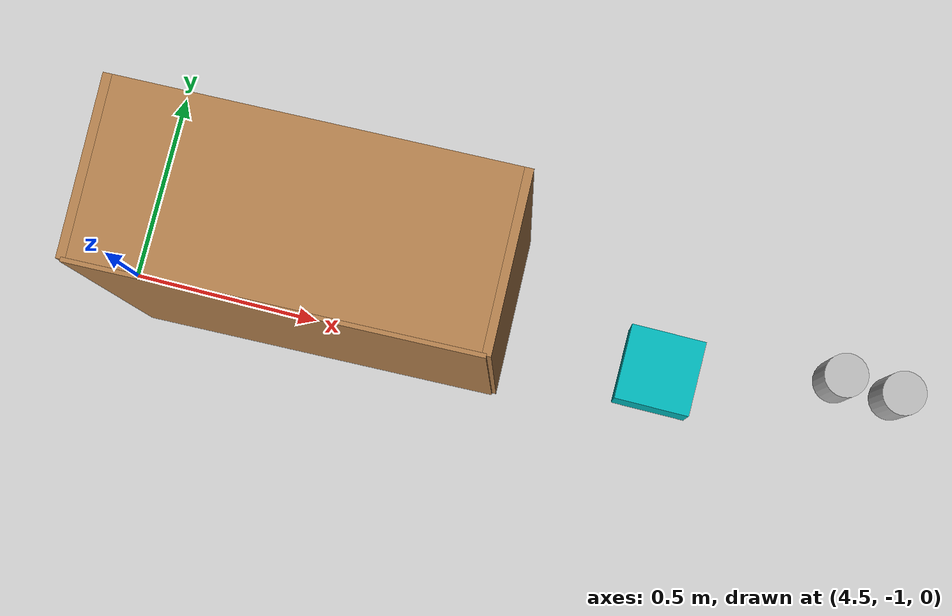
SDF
<sdf version="1.7">
 <world name="default">
  <model name="ground_plane">
   <static>1</static>
   <link name="link">
    <collision name="collision">
     <geometry><plane><normal>0 0 1</normal><size>100 100</size></plane></geometry>
     <surface>
      <contact><collide_bitmask>65535</collide_bitmask></contact>
      <friction><ode><mu>100</mu><mu2>50</mu2></ode></friction>
     </surface>
    </collision>
    <visual name="visual">
     <cast_shadows>0</cast_shadows>
     <geometry><plane><normal>0 0 1</normal><size>100 100</size></plane></geometry>
     <material>
      <script><uri>file://media/materials/scripts/gazebo.material</uri><name>Gazebo/Grey</name></script>
     </material>
    </visual>
   </link>
  </model>
  <model name="bookshelf_clone">
   <static>1</static>
   <link name="link">
    <inertial><mass>1</mass></inertial>
    <collision name="back">
     <pose>0 0.005 0.6 0 -0 0</pose>
     <geometry><box><size>0.9 0.01 1.2</size></box></geometry>
    </collision>
    <visual name="visual1">
     <pose>0 0.005 0.6 0 -0 0</pose>
     <geometry><box><size>0.9 0.01 1.2</size></box></geometry>
     <material>
      <script><uri>file://media/materials/scripts/gazebo.material</uri><name>Gazebo/Wood</name></script>
     </material>
    </visual>
    <collision name="left_side">
     <pose>0.45 -0.195 0.6 0 -0 0</pose>
     <geometry><box><size>0.02 0.4 1.2</size></box></geometry>
    </collision>
    <visual name="visual2">
     <pose>0.45 -0.195 0.6 0 -0 0</pose>
     <geometry><box><size>0.02 0.4 1.2</size></box></geometry>
     <material>
      <script><uri>file://media/materials/scripts/gazebo.material</uri><name>Gazebo/Wood</name></script>
     </material>
    </visual>
    <collision name="right_side">
     <pose>-0.45 -0.195 0.6 0 -0 0</pose>
     <geometry><box><size>0.02 0.4 1.2</size></box></geometry>
    </collision>
    <visual name="visual3">
     <pose>-0.45 -0.195 0.6 0 -0 0</pose>
     <geometry><box><size>0.02 0.4 1.2</size></box></geometry>
     <material>
      <script><uri>file://media/materials/scripts/gazebo.material</uri><name>Gazebo/Wood</name></script>
     </material>
    </visual>
    <collision name="bottom">
     <pose>0 -0.195 0.03 0 -0 0</pose>
     <geometry><box><size>0.88 0.4 0.06</size></box></geometry>
    </collision>
    <visual name="visual4">
     <pose>0 -0.195 0.03 0 -0 0</pose>
     <geometry><box><size>0.88 0.4 0.06</size></box></geometry>
     <material>
      <script><uri>file://media/materials/scripts/gazebo.material</uri><name>Gazebo/Wood</name></script>
     </material>
    </visual>
    <collision name="top">
     <pose>0 -0.195 1.19 0 -0 0</pose>
     <geometry><box><size>0.88 0.4 0.02</size></box></geometry>
    </collision>
    <visual name="visual5">
     <pose>0 -0.195 1.19 0 -0 0</pose>
     <geometry><box><size>0.88 0.4 0.02</size></box></geometry>
     <material>
      <script><uri>file://media/materials/scripts/gazebo.material</uri><name>Gazebo/Wood</name></script>
     </material>
    </visual>
    <collision name="low_shelf">
     <pose>0 -0.195 0.43 0 -0 0</pose>
     <geometry><box><size>0.88 0.4 0.02</size></box></geometry>
    </collision>
    <visual name="visual6">
     <pose>0 -0.195 0.43 0 -0 0</pose>
     <geometry><box><size>0.88 0.4 0.02</size></box></geometry>
     <material>
      <script><uri>file://media/materials/scripts/gazebo.material</uri><name>Gazebo/Wood</name></script>
     </material>
    </visual>
    <collision name="high_shelf">
     <pose>0 -0.195 0.8 0 -0 0</pose>
     <geometry><box><size>0.88 0.4 0.02</size></box></geometry>
    </collision>
    <visual name="visual7">
     <pose>0 -0.195 0.8 0 -0 0</pose>
     <geometry><box><size>0.88 0.4 0.02</size></box></geometry>
     <material>
      <script><uri>file://media/materials/scripts/gazebo.material</uri><name>Gazebo/Wood</name></script>
     </material>
    </visual>
   </link>
   <pose>5.06709 -1.09469 0.277822 0 0 -3.11789</pose>
  </model>
  <model name="cylinder_o">
   <link name="link_0">
    <pose>0 0 0.1 0 -0 0</pose>
    <inertial>
     <mass>1</mass>
     <inertia><ixx>0.145833</ixx><ixy>0</ixy><ixz>0</ixz><iyy>0.145833</iyy><iyz>0</iyz><izz>0.125</izz></inertia>
    </inertial>
    <visual name="visual">
     <geometry><cylinder><radius>0.1</radius><length>0.2</length></cylinder></geometry>
     <material>
      <lighting>1</lighting>
      <script><uri>file://media/materials/scripts/gazebo.material</uri><name>Gazebo/Grey</name></script>
      <ambient>1 0.561 0 1</ambient>
      <diffuse>1 0.561 0 1</diffuse>
      <specular>0 0 0 1</specular>
      <emissive>0 0 0 1</emissive>
      <shader type="vertex"><normal_map>__default__</normal_map></shader>
     </material>
    </visual>
    <collision name="collision">
     <geometry><cylinder><radius>0.1</radius><length>0.2</length></cylinder></geometry>
     <surface>
      <friction>
       <ode><mu>1</mu><mu2>1</mu2><fdir1>0 0 0</fdir1><slip1>0</slip1><slip2>0</slip2></ode>
       <torsional>
        <coefficient>1</coefficient>
        <patch_radius>0</patch_radius>
        <surface_radius>0</surface_radius>
        <use_patch_radius>1</use_patch_radius>
        <ode><slip>0</slip></ode>
       </torsional>
      </friction>
      <bounce><restitution_coefficient>0</restitution_coefficient><threshold>1e+06</threshold></bounce>
      <contact>
       <collide_without_contact>0</collide_without_contact>
       <collide_without_contact_bitmask>1</collide_without_contact_bitmask>
       <collide_bitmask>1</collide_bitmask>
       <ode>
        <soft_cfm>0</soft_cfm>
        <soft_erp>0.2</soft_erp>
        <kp>1e+13</kp>
        <kd>1</kd>
        <max_vel>0.01</max_vel>
        <min_depth>0</min_depth>
       </ode>
       <bullet>
        <split_impulse>1</split_impulse>
        <split_impulse_penetration_threshold>-0.01</split_impulse_penetration_threshold>
        <soft_cfm>0</soft_cfm>
        <soft_erp>0.2</soft_erp>
        <kp>1e+13</kp>
        <kd>1</kd>
       </bullet>
      </contact>
     </surface>
    </collision>
   </link>
   <static>1</static>
   <pose>5.20056 -0.842371 0.344102 0 -0 0</pose>
  </model>
  <model name="beer">
   <link name="link">
    <pose>0 0 0.115 0 -0 0</pose>
    <inertial>
     <mass>0.39</mass>
     <inertia><ixx>0.00058</ixx><ixy>0</ixy><ixz>0</ixz><iyy>0.00058</iyy><iyz>0</iyz><izz>0.00019</izz></inertia>
    </inertial>
    <collision name="collision">
     <geometry><cylinder><radius>0.055</radius><length>0.23</length></cylinder></geometry>
    </collision>
    <visual name="visual">
     <geometry><cylinder><radius>0.055</radius><length>0.23</length></cylinder></geometry>
     <material>
      <script>
       <uri>model://beer/materials/scripts</uri>
       <uri>model://beer/materials/textures</uri>
       <name>Beer/Diffuse</name>
      </script>
     </material>
    </visual>
   </link>
   <pose>6.50408 -0.857973 0.329521 8e-06 1.8e-05 0.018777</pose>
  </model>
  <model name="beer_0">
   <link name="link">
    <pose>0 0 0.115 0 -0 0</pose>
    <inertial>
     <mass>0.39</mass>
     <inertia><ixx>0.00058</ixx><ixy>0</ixy><ixz>0</ixz><iyy>0.00058</iyy><iyz>0</iyz><izz>0.00019</izz></inertia>
    </inertial>
    <collision name="collision">
     <geometry><cylinder><radius>0.055</radius><length>0.23</length></cylinder></geometry>
    </collision>
    <visual name="visual">
     <geometry><cylinder><radius>0.055</radius><length>0.23</length></cylinder></geometry>
     <material>
      <script>
       <uri>model://beer/materials/scripts</uri>
       <uri>model://beer/materials/textures</uri>
       <name>Beer/Diffuse</name>
      </script>
     </material>
    </visual>
   </link>
   <pose>6.35605 -0.850127 0.329512 1e-06 -2.7e-05 0.006479</pose>
  </model>
  <model name="cube_bg">
   <link name="link_2">
    <pose>0 0 0.1 0 -0 0</pose>
    <inertial>
     <mass>1</mass>
     <inertia>
      <ixx>0.166667</ixx>
      <ixy>0</ixy>
      <ixz>0</ixz>
      <iyy>0.166667</iyy>
      <iyz>0</iyz>
      <izz>0.166667</izz>
     </inertia>
    </inertial>
    <visual name="visual">
     <geometry><box><size>0.2 0.2 0.2</size></box></geometry>
     <material>
      <lighting>1</lighting>
      <script><uri>file://media/materials/scripts/gazebo.material</uri><name>Gazebo/Grey</name></script>
      <ambient>0 0.71 0.722 1</ambient>
      <diffuse>0 0.71 0.722 1</diffuse>
      <specular>0 0 0 1</specular>
      <emissive>0 0 0 1</emissive>
      <shader type="vertex"><normal_map>__default__</normal_map></shader>
     </material>
    </visual>
    <collision name="collision">
     <geometry><box><size>0.2 0.2 0.2</size></box></geometry>
     <surface>
      <friction>
       <ode><mu>1</mu><mu2>1</mu2><fdir1>0 0 0</fdir1><slip1>0</slip1><slip2>0</slip2></ode>
       <torsional>
        <coefficient>1</coefficient>
        <patch_radius>0</patch_radius>
        <surface_radius>0</surface_radius>
        <use_patch_radius>1</use_patch_radius>
        <ode><slip>0</slip></ode>
       </torsional>
      </friction>
      <bounce><restitution_coefficient>0</restitution_coefficient><threshold>1e+06</threshold></bounce>
      <contact>
       <collide_without_contact>0</collide_without_contact>
       <collide_without_contact_bitmask>1</collide_without_contact_bitmask>
       <collide_bitmask>1</collide_bitmask>
       <ode>
        <soft_cfm>0</soft_cfm>
        <soft_erp>0.2</soft_erp>
        <kp>1e+13</kp>
        <kd>1</kd>
        <max_vel>0.01</max_vel>
        <min_depth>0</min_depth>
       </ode>
       <bullet>
        <split_impulse>1</split_impulse>
        <split_impulse_penetration_threshold>-0.01</split_impulse_penetration_threshold>
        <soft_cfm>0</soft_cfm>
        <soft_erp>0.2</soft_erp>
        <kp>1e+13</kp>
        <kd>1</kd>
       </bullet>
      </contact>
     </surface>
    </collision>
   </link>
   <static>1</static>
   <pose>5.92664 -0.918341 0 0 -0 0</pose>
  </model>
 </world>
</sdf>
